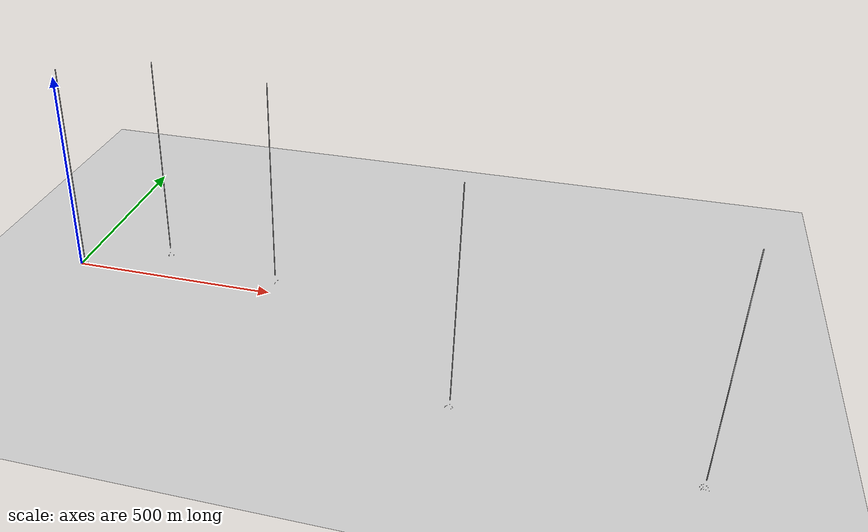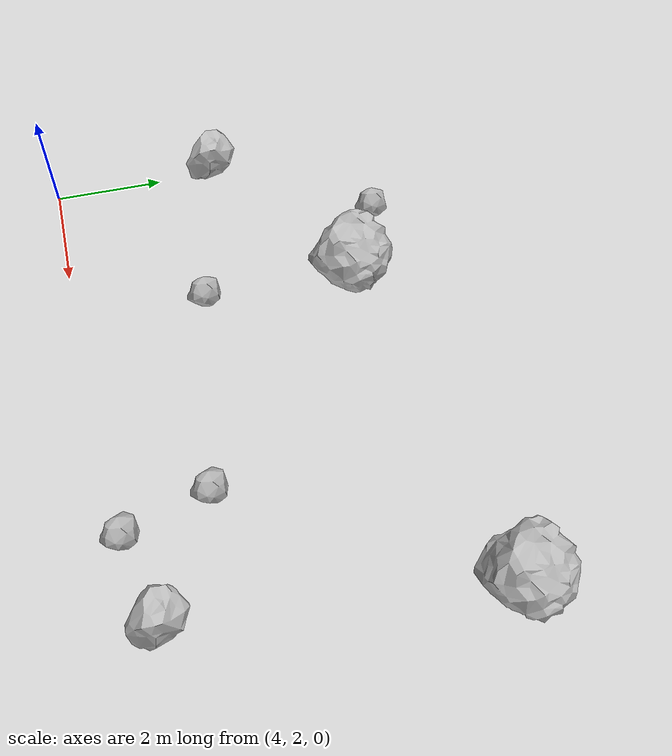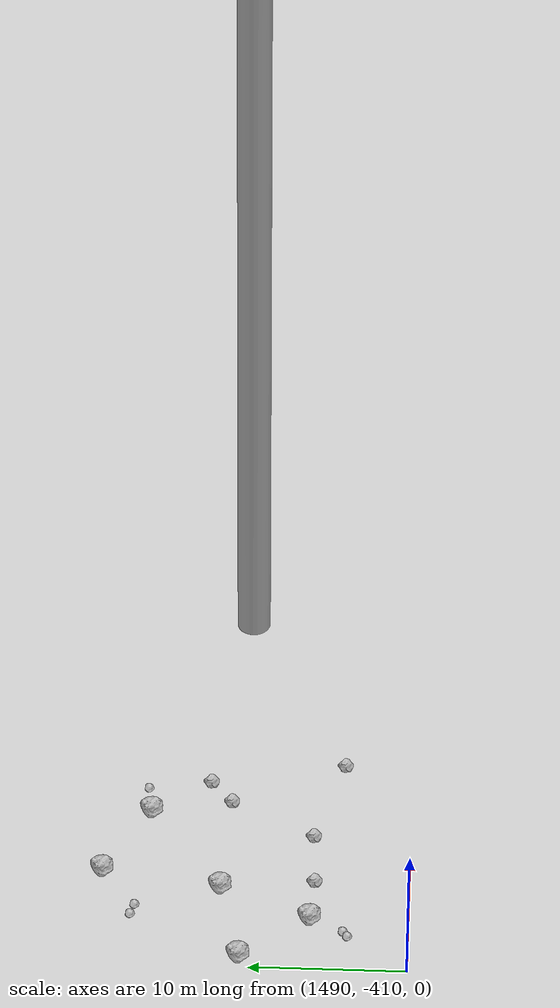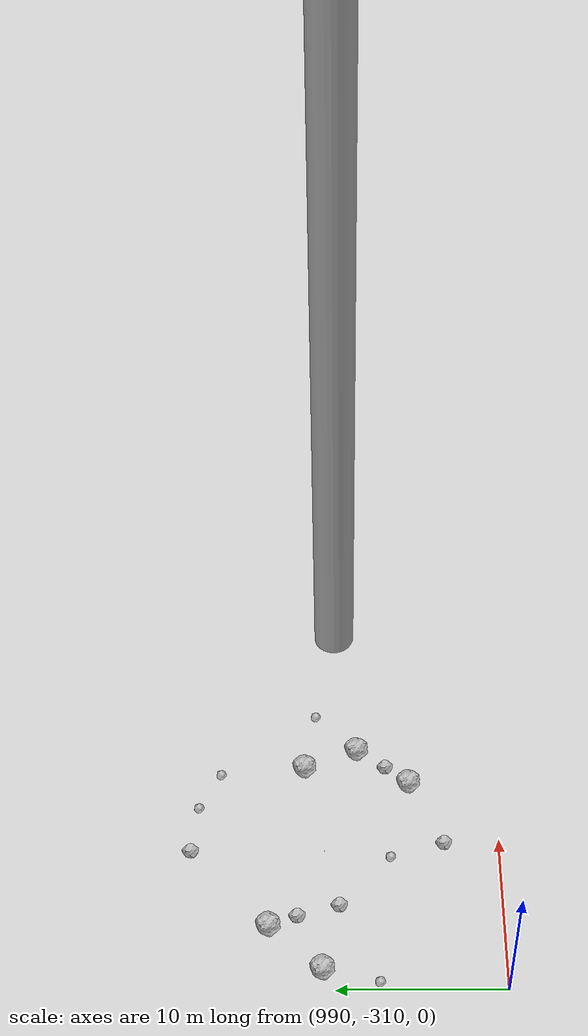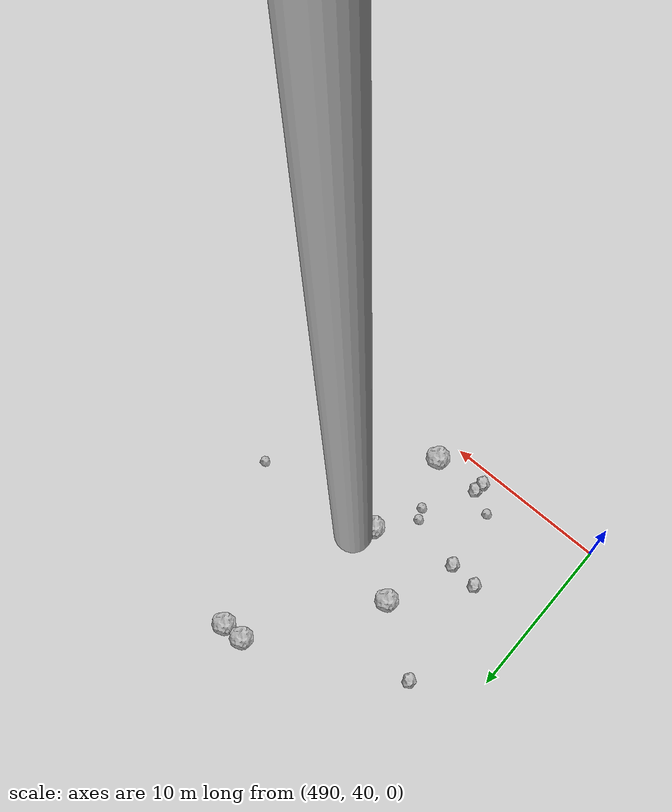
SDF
<?xml version="1.0" ?>
<sdf version="1.6">
  <world name="default">

    <include>
      <uri>model://custom_ground</uri>
    </include>

    <include>
      <uri>model://sun</uri>
    </include>

    <spherical_coordinates>
      <surface_model>EARTH_WGS84</surface_model>
      <latitude_deg>38.161479</latitude_deg>
      <longitude_deg>-122.454630</longitude_deg>
      <elevation>488.0</elevation>
      <heading_deg>90</heading_deg>
    </spherical_coordinates>

    <model name="rock1_0_0">
      <include>
        <uri>model://rock1</uri>
        <pose>8.309470194084101 -5.963713779748467 0.5 0 0 0</pose>
      </include>
    </model>
    <model name="rock1_0_1">
      <include>
        <uri>model://rock1</uri>
        <pose>13.315584683592514 8.14288889748299 0.5 0 0 0</pose>
      </include>
    </model>
    <model name="rock1_0_2">
      <include>
        <uri>model://rock1</uri>
        <pose>16.48756992795455 2.4428006162151394 0.5 0 0 0</pose>
      </include>
    </model>
    <model name="rock1_0_3">
      <include>
        <uri>model://rock1</uri>
        <pose>7.0111368616402014 7.121527899192934 0.5 0 0 0</pose>
      </include>
    </model>
    <model name="rock1_0_4">
      <include>
        <uri>model://rock1</uri>
        <pose>14.484927931566354 -3.2786530589524325 0.5 0 0 0</pose>
      </include>
    </model>
    <model name="rock2_0_0">
      <include>
        <uri>model://rock2</uri>
        <pose>7.1313580692595835 -6.420497876991029 0.3 0 0 0</pose>
      </include>
    </model>
    <model name="rock2_0_1">
      <include>
        <uri>model://rock2</uri>
        <pose>6.388291524993823 -7.204141655525085 0.3 0 0 0</pose>
      </include>
    </model>
    <model name="rock2_0_2">
      <include>
        <uri>model://rock2</uri>
        <pose>3.8209518940116105 5.0810034325892275 0.3 0 0 0</pose>
      </include>
    </model>
    <model name="rock2_0_3">
      <include>
        <uri>model://rock2</uri>
        <pose>13.824562282057801 -5.047104530484161 0.3 0 0 0</pose>
      </include>
    </model>
    <model name="rock2_0_4">
      <include>
        <uri>model://rock2</uri>
        <pose>12.660448436443284 2.6543984513028835 0.3 0 0 0</pose>
      </include>
    </model>
    <model name="rock3_0_0">
      <include>
        <uri>model://rock3</uri>
        <pose>19.63627419612727 2.3945131281010585 0.2 0 0 0</pose>
      </include>
    </model>
    <model name="rock3_0_1">
      <include>
        <uri>model://rock3</uri>
        <pose>5.581239214296632 7.9086627861288825 0.2 0 0 0</pose>
      </include>
    </model>
    <model name="rock3_0_2">
      <include>
        <uri>model://rock3</uri>
        <pose>6.963938595238313 4.364593315299318 0.2 0 0 0</pose>
      </include>
    </model>
    <model name="rock3_0_3">
      <include>
        <uri>model://rock3</uri>
        <pose>11.192578068121101 2.254536677808293 0.2 0 0 0</pose>
      </include>
    </model>
    <model name="rock3_0_4">
      <include>
        <uri>model://rock3</uri>
        <pose>10.74727204689064 3.761307856304372 0.2 0 0 0</pose>
      </include>
    </model>
    <model name="rock1_1_0">
      <include>
        <uri>model://rock1</uri>
        <pose>206.46865597768732 100.20504831643754 0.5 0 0 0</pose>
      </include>
    </model>
    <model name="rock1_1_1">
      <include>
        <uri>model://rock1</uri>
        <pose>196.508418578036 93.2787186839522 0.5 0 0 0</pose>
      </include>
    </model>
    <model name="rock1_1_2">
      <include>
        <uri>model://rock1</uri>
        <pose>208.51275935002272 97.33388520044372 0.5 0 0 0</pose>
      </include>
    </model>
    <model name="rock1_1_3">
      <include>
        <uri>model://rock1</uri>
        <pose>198.08805160568753 92.65057301939196 0.5 0 0 0</pose>
      </include>
    </model>
    <model name="rock1_1_4">
      <include>
        <uri>model://rock1</uri>
        <pose>195.76352403459185 103.66269876381887 0.5 0 0 0</pose>
      </include>
    </model>
    <model name="rock2_1_0">
      <include>
        <uri>model://rock2</uri>
        <pose>194.1541054774912 107.90380084528957 0.3 0 0 0</pose>
      </include>
    </model>
    <model name="rock2_1_1">
      <include>
        <uri>model://rock2</uri>
        <pose>202.93951722691594 103.96677493311542 0.3 0 0 0</pose>
      </include>
    </model>
    <model name="rock2_1_2">
      <include>
        <uri>model://rock2</uri>
        <pose>195.78015208705793 97.55870678053462 0.3 0 0 0</pose>
      </include>
    </model>
    <model name="rock2_1_3">
      <include>
        <uri>model://rock2</uri>
        <pose>203.1231961319315 101.21762009265302 0.3 0 0 0</pose>
      </include>
    </model>
    <model name="rock2_1_4">
      <include>
        <uri>model://rock2</uri>
        <pose>191.7067201422975 105.43731428147245 0.3 0 0 0</pose>
      </include>
    </model>
    <model name="rock3_1_0">
      <include>
        <uri>model://rock3</uri>
        <pose>202.78958423835658 97.08761529612576 0.2 0 0 0</pose>
      </include>
    </model>
    <model name="rock3_1_1">
      <include>
        <uri>model://rock3</uri>
        <pose>204.68988817686468 108.03680186922634 0.2 0 0 0</pose>
      </include>
    </model>
    <model name="rock3_1_2">
      <include>
        <uri>model://rock3</uri>
        <pose>207.96162715209257 96.1936442669474 0.2 0 0 0</pose>
      </include>
    </model>
    <model name="rock3_1_3">
      <include>
        <uri>model://rock3</uri>
        <pose>208.50396746071482 97.81637710368797 0.2 0 0 0</pose>
      </include>
    </model>
    <model name="rock3_1_4">
      <include>
        <uri>model://rock3</uri>
        <pose>198.25511413849466 97.44248523650211 0.2 0 0 0</pose>
      </include>
    </model>
    <model name="rock1_2_0">
      <include>
        <uri>model://rock1</uri>
        <pose>497.7509230616144 49.90457677104449 0.5 0 0 0</pose>
      </include>
    </model>
    <model name="rock1_2_1">
      <include>
        <uri>model://rock1</uri>
        <pose>503.08916005355275 57.10258655882897 0.5 0 0 0</pose>
      </include>
    </model>
    <model name="rock1_2_2">
      <include>
        <uri>model://rock1</uri>
        <pose>501.1685249541941 46.967866920619706 0.5 0 0 0</pose>
      </include>
    </model>
    <model name="rock1_2_3">
      <include>
        <uri>model://rock1</uri>
        <pose>504.4404393591694 57.10326187979854 0.5 0 0 0</pose>
      </include>
    </model>
    <model name="rock1_2_4">
      <include>
        <uri>model://rock1</uri>
        <pose>500.76045678074655 41.21388273467183 0.5 0 0 0</pose>
      </include>
    </model>
    <model name="rock2_2_0">
      <include>
        <uri>model://rock2</uri>
        <pose>497.7787274142953 41.319604174424455 0.3 0 0 0</pose>
      </include>
    </model>
    <model name="rock2_2_1">
      <include>
        <uri>model://rock2</uri>
        <pose>497.6803720785044 40.75915595380586 0.3 0 0 0</pose>
      </include>
    </model>
    <model name="rock2_2_2">
      <include>
        <uri>model://rock2</uri>
        <pose>496.01791225500915 45.7292859940677 0.3 0 0 0</pose>
      </include>
    </model>
    <model name="rock2_2_3">
      <include>
        <uri>model://rock2</uri>
        <pose>494.2281888685603 45.895621249974205 0.3 0 0 0</pose>
      </include>
    </model>
    <model name="rock2_2_4">
      <include>
        <uri>model://rock2</uri>
        <pose>493.6914944281367 52.80960278471887 0.3 0 0 0</pose>
      </include>
    </model>
    <model name="rock3_2_0">
      <include>
        <uri>model://rock3</uri>
        <pose>504.92125042210137 45.9020209999696 0.2 0 0 0</pose>
      </include>
    </model>
    <model name="rock3_2_1">
      <include>
        <uri>model://rock3</uri>
        <pose>499.2918156290151 44.83296420075726 0.2 0 0 0</pose>
      </include>
    </model>
    <model name="rock3_2_2">
      <include>
        <uri>model://rock3</uri>
        <pose>499.57970025921907 44.16198675429716 0.2 0 0 0</pose>
      </include>
    </model>
    <model name="rock3_2_3">
      <include>
        <uri>model://rock3</uri>
        <pose>508.7470018832175 47.89341783461686 0.2 0 0 0</pose>
      </include>
    </model>
    <model name="rock3_2_4">
      <include>
        <uri>model://rock3</uri>
        <pose>496.31296111787077 41.99893037504361 0.2 0 0 0</pose>
      </include>
    </model>
    <model name="rock1_3_0">
      <include>
        <uri>model://rock1</uri>
        <pose>1006.51997482641 -301.3552839727274 0.5 0 0 0</pose>
      </include>
    </model>
    <model name="rock1_3_1">
      <include>
        <uri>model://rock1</uri>
        <pose>1005.226776453924 -298.102798054883 0.5 0 0 0</pose>
      </include>
    </model>
    <model name="rock1_3_2">
      <include>
        <uri>model://rock1</uri>
        <pose>991.3129884865532 -299.2286676925724 0.5 0 0 0</pose>
      </include>
    </model>
    <model name="rock1_3_3">
      <include>
        <uri>model://rock1</uri>
        <pose>994.1289089607799 -296.04149773823946 0.5 0 0 0</pose>
      </include>
    </model>
    <model name="rock1_3_4">
      <include>
        <uri>model://rock1</uri>
        <pose>1004.0744975524904 -304.56138861940485 0.5 0 0 0</pose>
      </include>
    </model>
    <model name="rock2_3_0">
      <include>
        <uri>model://rock2</uri>
        <pose>1005.1999160513241 -303.13580399331653 0.3 0 0 0</pose>
      </include>
    </model>
    <model name="rock2_3_1">
      <include>
        <uri>model://rock2</uri>
        <pose>994.7279943086561 -297.7322094726247 0.3 0 0 0</pose>
      </include>
    </model>
    <model name="rock2_3_2">
      <include>
        <uri>model://rock2</uri>
        <pose>999.1937010948894 -291.2375083225533 0.3 0 0 0</pose>
      </include>
    </model>
    <model name="rock2_3_3">
      <include>
        <uri>model://rock2</uri>
        <pose>999.6831743416598 -306.60444102642015 0.3 0 0 0</pose>
      </include>
    </model>
    <model name="rock2_3_4">
      <include>
        <uri>model://rock2</uri>
        <pose>995.4410276723771 -300.23691573093015 0.3 0 0 0</pose>
      </include>
    </model>
    <model name="rock3_3_0">
      <include>
        <uri>model://rock3</uri>
        <pose>990.4437038542303 -302.5942281607673 0.2 0 0 0</pose>
      </include>
    </model>
    <model name="rock3_3_1">
      <include>
        <uri>model://rock3</uri>
        <pose>1009.109906522424 -298.8089765186137 0.2 0 0 0</pose>
      </include>
    </model>
    <model name="rock3_3_2">
      <include>
        <uri>model://rock3</uri>
        <pose>1002.2760043491735 -291.6373191745183 0.2 0 0 0</pose>
      </include>
    </model>
    <model name="rock3_3_3">
      <include>
        <uri>model://rock3</uri>
        <pose>998.7511264416288 -303.3795143551364 0.2 0 0 0</pose>
      </include>
    </model>
    <model name="rock3_3_4">
      <include>
        <uri>model://rock3</uri>
        <pose>1004.7174436137441 -292.9266484378045 0.2 0 0 0</pose>
      </include>
    </model>
    <model name="rock1_4_0">
      <include>
        <uri>model://rock1</uri>
        <pose>1494.4503651187954 -403.70624282997244 0.5 0 0 0</pose>
      </include>
    </model>
    <model name="rock1_4_1">
      <include>
        <uri>model://rock1</uri>
        <pose>1490.9843032327785 -399.33621417985955 0.5 0 0 0</pose>
      </include>
    </model>
    <model name="rock1_4_2">
      <include>
        <uri>model://rock1</uri>
        <pose>1503.7146943357852 -393.24620574546316 0.5 0 0 0</pose>
      </include>
    </model>
    <model name="rock1_4_3">
      <include>
        <uri>model://rock1</uri>
        <pose>1497.0144424758892 -397.9454372627223 0.5 0 0 0</pose>
      </include>
    </model>
    <model name="rock1_4_4">
      <include>
        <uri>model://rock1</uri>
        <pose>1498.2536182210956 -390.37315970751354 0.5 0 0 0</pose>
      </include>
    </model>
    <model name="rock2_4_0">
      <include>
        <uri>model://rock2</uri>
        <pose>1508.1577300016813 -405.5991820508893 0.3 0 0 0</pose>
      </include>
    </model>
    <model name="rock2_4_1">
      <include>
        <uri>model://rock2</uri>
        <pose>1501.607265919973 -403.7565529697542 0.3 0 0 0</pose>
      </include>
    </model>
    <model name="rock2_4_2">
      <include>
        <uri>model://rock2</uri>
        <pose>1506.3391511719567 -396.9891989041618 0.3 0 0 0</pose>
      </include>
    </model>
    <model name="rock2_4_3">
      <include>
        <uri>model://rock2</uri>
        <pose>1497.5579059616682 -403.929355156275 0.3 0 0 0</pose>
      </include>
    </model>
    <model name="rock2_4_4">
      <include>
        <uri>model://rock2</uri>
        <pose>1504.5721259236825 -398.38687461126216 0.3 0 0 0</pose>
      </include>
    </model>
    <model name="rock3_4_0">
      <include>
        <uri>model://rock3</uri>
        <pose>1505.6624164012946 -393.00731383782716 0.2 0 0 0</pose>
      </include>
    </model>
    <model name="rock3_4_1">
      <include>
        <uri>model://rock3</uri>
        <pose>1495.092795829927 -392.6280800944065 0.2 0 0 0</pose>
      </include>
    </model>
    <model name="rock3_4_2">
      <include>
        <uri>model://rock3</uri>
        <pose>1494.2533471731233 -392.3904449980674 0.2 0 0 0</pose>
      </include>
    </model>
    <model name="rock3_4_3">
      <include>
        <uri>model://rock3</uri>
        <pose>1492.7909734362067 -406.16300279583794 0.2 0 0 0</pose>
      </include>
    </model>
    <model name="rock3_4_4">
      <include>
        <uri>model://rock3</uri>
        <pose>1493.216126937414 -405.8667463806452 0.2 0 0 0</pose>
      </include>
    </model>

    <model name="cylinder_1">
      <static>true</static>
      <link name="link">
        <visual name="visual">
          <geometry>
            <cylinder>
              <radius>1</radius>
              <length>500</length>
            </cylinder>
          </geometry>
        </visual>
      </link>
      <pose>10 0 270 0 0 0</pose>
    </model>

    <model name="cylinder_2">
      <static>true</static>
      <link name="link">
        <visual name="visual">
          <geometry>
            <cylinder>
              <radius>1</radius>
              <length>500</length>
            </cylinder>
          </geometry>
        </visual>
      </link>
      <pose>200 100 270 0 0 0</pose>
    </model>

    <model name="cylinder_3">
      <static>true</static>
      <link name="link">
        <visual name="visual">
          <geometry>
            <cylinder>
              <radius>1</radius>
              <length>500</length>
            </cylinder>
          </geometry>
        </visual>
      </link>
      <pose>500 50 270 0 0 0</pose>
    </model>

    <model name="cylinder_4">
      <static>true</static>
      <link name="link">
        <visual name="visual">
          <geometry>
            <cylinder>
              <radius>1</radius>
              <length>500</length>
            </cylinder>
          </geometry>
        </visual>
      </link>
      <pose>1000 -300 270 0 0 0</pose>
    </model>

    <model name="cylinder_5">
      <static>true</static>
      <link name="link">
        <visual name="visual">
          <geometry>
            <cylinder>
              <radius>1</radius>
              <length>500</length>
            </cylinder>
          </geometry>
        </visual>
      </link>
      <pose>1500 -400 270 0 0 0</pose>
    </model>

  </world>
</sdf>

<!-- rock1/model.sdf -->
<sdf version="1.6">
  <model name="rock1">
    <static>true</static> <!-- Set to true if the model should not move -->
    <pose>0 0 0 0 0 0</pose>

    <!--z offset is 0.5 for full scale-->

    <link name="link">
      <collision name="rock1_collision">
        <geometry>
          <mesh>
            <uri>model://meshes/rock1.dae</uri>
          </mesh>
        </geometry>
      </collision>
      <visual name="rock1_visual">
        <geometry>
          <mesh>
            <uri>model://meshes/rock1.dae</uri>
          </mesh>
        </geometry>
        <material>
          <script>
            <uri>model://materials/scripts/sand_pebbles.material</uri>
            <name>custom_ground/Image</name>
          </script>
        </material>
      </visual>
    </link>
  </model>
</sdf>

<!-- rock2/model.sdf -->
<sdf version="1.6">
  <model name="rock2">
    <static>true</static> <!-- Set to true if the model should not move -->
    <pose>0 0 0 0 0 0</pose>

    <!--z offset is 0.3 for full scale-->

    <link name="link">
      <collision name="rock2_collision">
        <geometry>
          <mesh>
            <uri>model://meshes/rock2.dae</uri>
          </mesh>
        </geometry>
      </collision>
      <visual name="rock2_visual">
        <geometry>
          <mesh>
            <uri>model://meshes/rock2.dae</uri>
          </mesh>
        </geometry>
        <material>
          <script>
            <uri>model://materials/scripts/sand_pebbles.material</uri>
            <name>custom_ground/Image</name>
          </script>
        </material>
      </visual>
    </link>
  </model>
</sdf>

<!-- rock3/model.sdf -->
<sdf version="1.6">
  <model name="rock3">
    <static>true</static> <!-- Set to true if the model should not move -->
    <pose>0 0 0 0 0 0</pose>

    <!--z offset is 0.2 for full scale-->

    <link name="link">
      <collision name="rock3_collision">
        <geometry>
          <mesh>
            <uri>model://meshes/rock3.dae</uri>
          </mesh>
        </geometry>
      </collision>
      <visual name="rock3_visual">
        <geometry>
          <mesh>
            <uri>model://meshes/rock3.dae</uri>
          </mesh>
        </geometry>
        <material>
          <script>
            <uri>model://materials/scripts/sand_pebbles.material</uri>
            <name>custom_ground/Image</name>
          </script>
        </material>
      </visual>
    </link>
  </model>
</sdf>

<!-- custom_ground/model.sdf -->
<sdf version="1.6">
  <model name="custom_ground">
    <static>true</static> <!-- Ground is static and immovable -->
    <link name="ground_link">
      <pose>240 0 0 0 0 0</pose> <!-- Position and orientation relative to the world -->
      <!-- Visual Representation -->
      <visual name="ground_visual">
        <geometry>
          <plane>
            <normal>0 0 1</normal> <!-- Upward facing plane -->
            <size>500 500</size> <!-- Size of the plane -->
          </plane>
        </geometry>
        <material>
          <script>
            <uri>model://materials/scripts/sand_pebbles.material</uri>
            <name>custom_ground/Image</name>
          </script>
        </material>
      </visual>

      <!-- Collision Representation -->
      <collision name="ground_collision">
        <geometry>
          <plane>
            <normal>0 0 1</normal>
            <size>100 100</size>
          </plane>
        </geometry>
      </collision>

    </link>
  </model>
</sdf>
